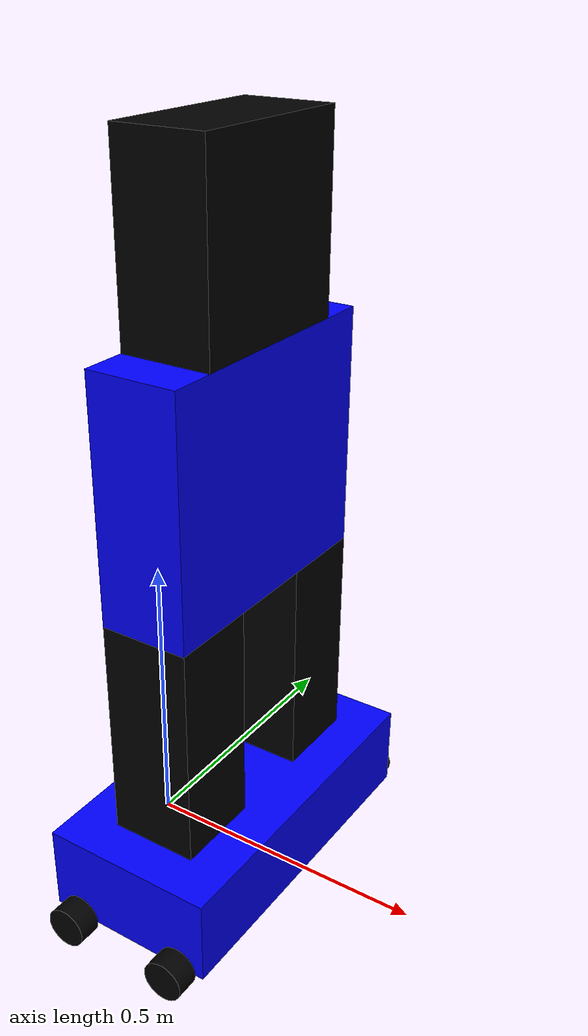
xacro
<?xml version="1.0"?>
<robot xmlns:xacro="http://www.ros.org/wiki/xacro">

  <xacro:include filename="inertial_macros.xacro"/>

  <material name="Blue">
    <color rgba="0 0 1 1"/>
  </material>
  <material name="Black">
    <color rgba="0 0 0 1"/>
  </material>

  <link name="base_link">
    <visual>
      <origin xyz="0.15 0.0 0.075"/>
      <geometry>
        <box size="0.30 0.60 0.15"/>
      </geometry>
      <material name="Blue"/>
    </visual>
    <collision>
      <origin xyz="0.15 0.0 0.075"/>
      <geometry>
        <box size="0.30 0.60 0.15"/>
      </geometry>
    </collision>
    <xacro:inertial_box  mass="5.0" x="0.30" y="0.60" z="0.15">
      <origin xyz="0.15 0.0 0.075" rpy= "0.0 0.0 0.0"/>
    </xacro:inertial_box>
  </link>
  <link name="base_footprint">
  </link>
  <joint name="base_footprint_joint" type="fixed">
    <parent link="base_link"/>
    <child link="base_footprint"/>
    <origin xyz="0 0 0.0" rpy="0 0 0"/>
  </joint>

  <!--front left wheel-->
  <joint name="front_left_wheel_joint" type="continuous">
    <parent link="base_link"/>
    <child link="front_left_wheel"/>
    <origin xyz="0.25 0.32 0.0" rpy="-${pi/2} 0.0 0.0"/>
    <axis xyz="0.0 0.0 1.0"/>
  </joint>
  <link name="front_left_wheel">
    <visual>
      <geometry>
        <cylinder radius="0.035" length="0.04"/>
      </geometry>
      <material name="Black"/>
    </visual>
    <collision>
      <geometry>
        <sphere radius="0.035"/>
      </geometry>
    </collision>
    <xacro:inertial_cylinder  mass="0.10" radius="0.035" length="0.04">
      <origin xyz="0.0 0.0 0.0" rpy= "0.0 0.0 0.0"/>
    </xacro:inertial_cylinder>
    </link>

    <!--front right wheel-->
  <joint name="front_right_wheel_joint" type="continuous">
    <parent link="base_link"/>
    <child link="front_right_wheel"/>
    <origin xyz="0.25 -0.32 0.0" rpy=" ${pi/2} 0.0 0.0"/>
    <axis xyz="0.0 0.0 -1.0"/>
  </joint>

  <link name="front_right_wheel">
    <visual>
      <geometry>
        <cylinder radius="0.035" length="0.04"/>
      </geometry>
      <material name="Black"/>
    </visual>
    <collision>
      <geometry>
        <sphere radius="0.035"/>
      </geometry>
    </collision>
    <xacro:inertial_cylinder  mass="0.10" radius="0.035" length="0.04">
      <origin xyz="0.0 0.0 0.0" rpy= "0.0 0.0 0.0"/>
    </xacro:inertial_cylinder>
  </link>
  <!--back left wheel-->
  <joint name="back_left_wheel_joint" type="continuous">
    <parent link="base_link"/>
    <child link="back_left_wheel"/>
    <origin xyz="0.05 0.32 0.0" rpy="-${pi/2} 0.0 0.0"/>
    <axis xyz="0.0 0.0 1.0"/>
  </joint>

  <link name="back_left_wheel">
    <visual>
      <geometry>
        <cylinder radius="0.035" length="0.04"/>
      </geometry>
      <material name="Black"/>
    </visual>
    <collision>
      <geometry>
        <sphere radius="0.035"/>
      </geometry>
    </collision>
    <xacro:inertial_cylinder  mass="0.10" radius="0.035" length="0.04">
      <origin xyz="0.0 0.0 0.0" rpy= "0.0 0.0 0.0"/>
    </xacro:inertial_cylinder>
  </link>

  <!--back right wheel-->
  <joint name="back_right_wheel_joint" type="continuous">
    <parent link="base_link"/>
    <child link="back_right_wheel"/>
    <origin xyz="0.05 -0.32 0.0" rpy=" ${pi/2} 0.0 0.0"/>
    <axis xyz="0.0 0.0 -1.0"/>
  </joint>

  <link name="back_right_wheel">
    <visual>
      <geometry>
        <cylinder radius="0.035" length="0.04"/>
      </geometry>
      <material name="Black"/>
    </visual>
    <collision>
      <geometry>
        <sphere radius="0.035"/>
      </geometry>
    </collision>
    <xacro:inertial_cylinder  mass="0.10" radius="0.035" length="0.04">
      <origin xyz="0.0 0.0 0.0" rpy= "0.0 0.0 0.0"/>
    </xacro:inertial_cylinder>
  </link>
  <!--Left Feet-->
  <joint name="left_feet_joint" type="fixed">
    <parent link="base_link"/>
    <child link="left_feet"/>
    <origin xyz="0.15 0.15 0.34"/>
    <axis xyz="0.0 0.0 0.0"/>
  </joint>

  <link name="left_feet">
    <visual>
    <origin xyz="0.0 0.0 0.0" />
      <geometry>
        <box size="0.15 0.15 0.38"/>
      </geometry>
      <material name="Black"/>
    </visual>
    <collision>
      <geometry>
        <box size="0.15 0.15 0.38"/>
      </geometry>
    </collision>
    <xacro:inertial_box  mass="1.0" x="0.15" y="0.15" z="0.38">
      <origin xyz="0.0 0.0 0.0" rpy= "0.0 0.0 0.0"/>
    </xacro:inertial_box>
  </link>

  <!--Right Feet-->
  <joint name="right_feet_joint" type="fixed">
    <parent link="base_link"/>
    <child link="right_feet"/>
    <origin xyz="0.15 -0.15 0.34"/>
    <axis xyz="0.0 0.0 0.0"/>
  </joint>

  <link name="right_feet">
    <visual>
    <origin xyz="0.0 0.0 0.0" />
      <geometry>
        <box size="0.15 0.15 0.38"/>
      </geometry>
      <material name="Black"/>
    </visual>
    <collision>
      <geometry>
        <box size="0.15 0.15 0.38"/>
      </geometry>
    </collision>
    <xacro:inertial_box  mass="1.0" x="0.15" y="0.15" z="0.38">
      <origin xyz="0.0 0.0 0.0" rpy= "0.0 0.0 0.0"/>
    </xacro:inertial_box>
  </link>
  <!-- Body -->
  <joint name="body_joint" type="fixed">
    <parent link="base_link"/>
    <child link="body"/>
    <origin xyz="0.15 0.0 0.73"/>
    <axis xyz="0.0 0.0 0.0"/>
  </joint>

  <link name="body">
    <visual>
      <geometry>
        <box size="0.15 0.45 0.40"/>
      </geometry>
      <material name="Blue"/>
    </visual>
    <collision>
      <geometry>
        <box size="0.15 0.45 0.40"/>
      </geometry>
    </collision>
    <xacro:inertial_box  mass="0.3" x="0.15" y="0.45" z="0.40">
      <origin xyz="0.0 0.0 0.0" rpy= "0.0 0.0 0.0"/>
    </xacro:inertial_box>
  </link>

  <!--head-->
  <joint name="head_joint" type="fixed">
    <parent link="base_link"/>
    <child link="head"/>
    <origin xyz="0.15 0.0 1.08"/>
    <axis xyz="0.0 0.0 0.0"/>
  </joint>
  <link name="head">
    <visual>
      <geometry>
        <box size="0.15 0.30 0.30"/>
      </geometry>
      <material name="Black"/>
    </visual>
    <collision>
      <geometry>
        <box size="0.15 0.30 0.30"/>
      </geometry>
    </collision>
    <xacro:inertial_box  mass="0.3" x="0.15" y="0.30" z="0.40">
      <origin xyz="0.0 0.0 0.0" rpy= "0.0 0.0 0.0"/>
    </xacro:inertial_box>
  </link>
  <gazebo reference="base_link">
    <material>Gazebo/Blue</material>
  </gazebo>
  <gazebo reference="front_left_wheel">
    <material>Gazebo/Black</material>
  </gazebo>
  <gazebo reference="front_right_wheel">
    <material>Gazebo/Black</material>
  </gazebo>
  <gazebo reference="back_left_wheel">
    <material>Gazebo/Black</material>
  </gazebo>
  <gazebo reference="back_right_wheel">
    <material>Gazebo/Black</material>
  </gazebo>
  <gazebo reference="left_feet">
    <material>Gazebo/Black</material>
  </gazebo>
  <gazebo reference="right_feet">
    <material>Gazebo/Black</material>
  </gazebo>
  <gazebo reference="body">
    <material>Gazebo/Blue</material>
  </gazebo>
  <gazebo reference="head">
    <material>Gazebo/Black</material>
  </gazebo>

</robot>
